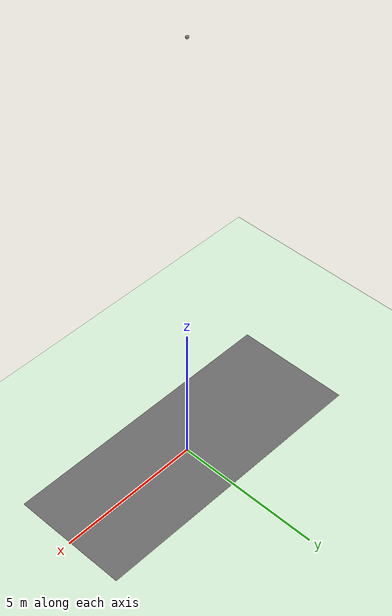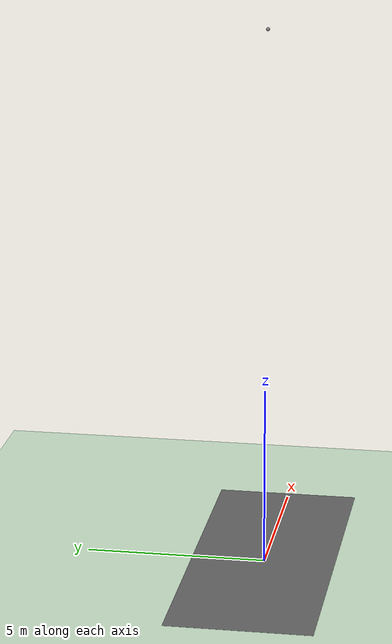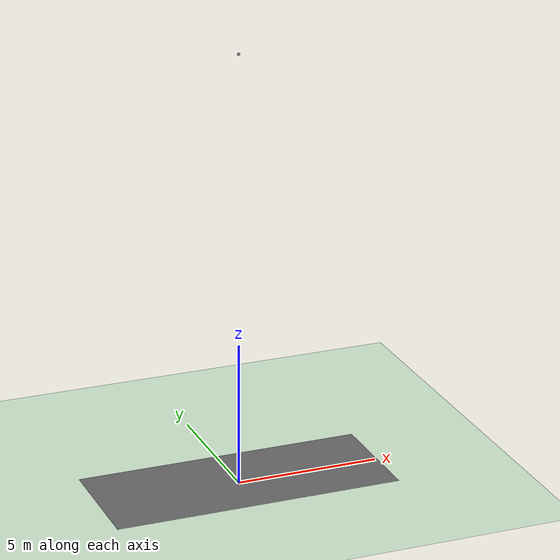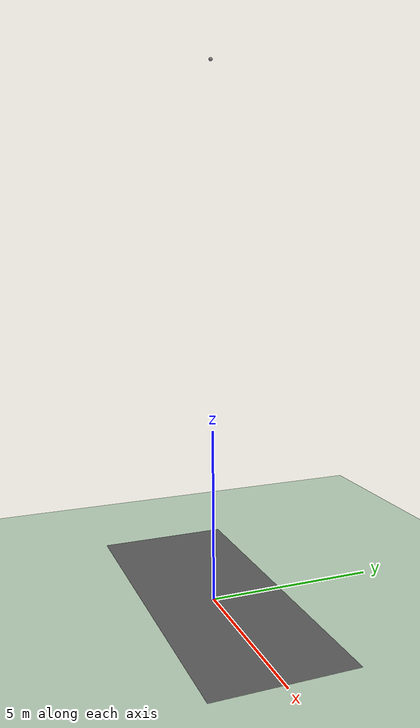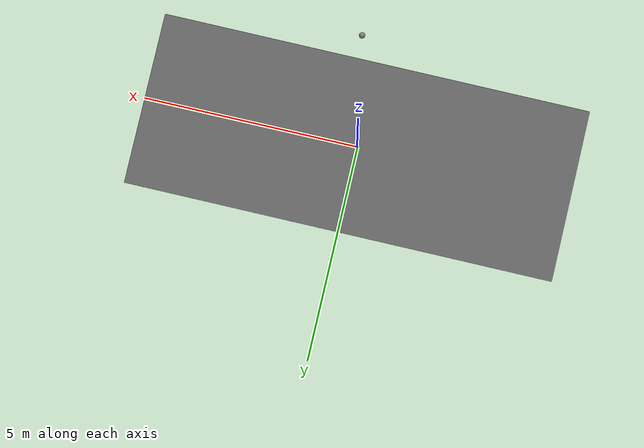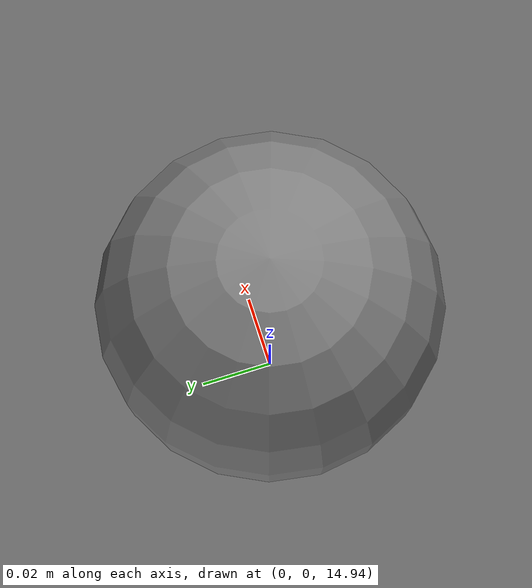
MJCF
<mujoco>
  <compiler angle="degree" coordinate="local" inertiafromgeom="true"/>
  <option integrator="RK4" timestep="0.03" gravity="0 0 0"/>
  <default>
  </default>
  <asset>
    <texture builtin="gradient" height="100" rgb1="1 1 1" rgb2="0 0 0" type="skybox" width="100"/>
    <texture builtin="flat" height="1278" mark="cross" markrgb="1 1 1" name="texgeom" random="0.01" rgb1="0.8 0.6 0.4" rgb2="0.8 0.6 0.4" type="cube" width="127"/>
    <texture builtin="checker" height="100" name="texplane" rgb1="0 0 0" rgb2="0.8 0.8 0.8" type="2d" width="100"/>
    <material name="MatPlane" reflectance="0.5" shininess="1" specular="1" texrepeat="30 30" texture="texplane"/>
    <material name="geom" texture="texgeom" texuniform="true"/>
  </asset>
  <worldbody>
    <light cutoff="100" diffuse="1 1 1" dir="-0 0 -1.3" directional="true" exponent="1" pos="0 0 1.3" specular=".1 .1 .1"/>
    <geom material="geom" name="floor" pos="0 0 0" rgba="0.8 0.9 0.8 1" size="40 40 40" type="plane"/>
    <body name="camera" pos= "0 0 15">
      <geom name="camerahead" pos="0 0 0" size="0.05" type="sphere"/>
      <camera name="track" mode="trackcom" pos="0 0 0" xyaxes="1 0 0 0 1 0"/>
    </body>
    <body name="torso" pos="0 0 0.1">
      <geom material="MatPlane" name="visibleObject" pos="0 0 0" size="5 2 0.001" type="box"/>
      <joint axis="1 0 0" limited="false" name="x" pos="0 0 0" type="slide"/>
      <joint axis="0 1 0" limited="false" name="y" pos="0 0 0" type="slide"/>
        <joint axis="0 0 1" limited="false" name="rot" pos="0 0 0" type="hinge"/>
    </body>
  </worldbody>
  <actuator>
    <!-- Those are just dummy actuators for providing ranges -->
    <motor ctrllimited="true" ctrlrange="-1 1" joint="x"/>
    <motor ctrllimited="true" ctrlrange="-5 5" joint="rot"/>
    <motor ctrllimited="true" ctrlrange="-1 1" joint="y"/>
  </actuator>
</mujoco>
